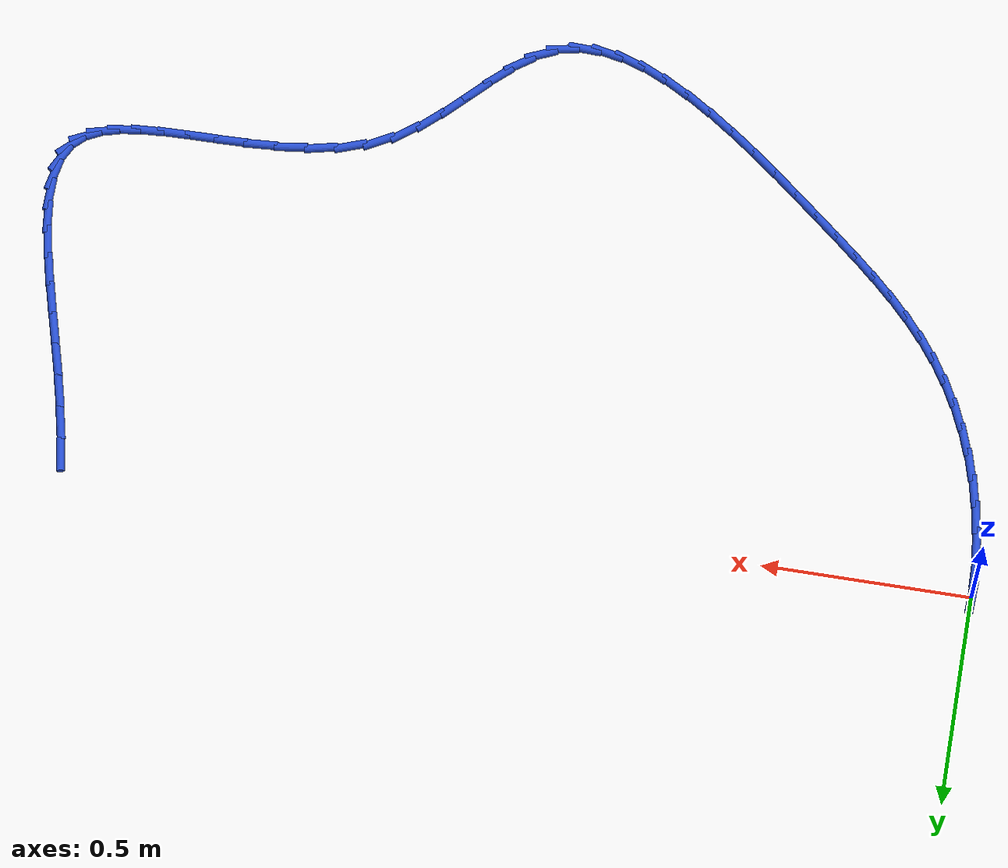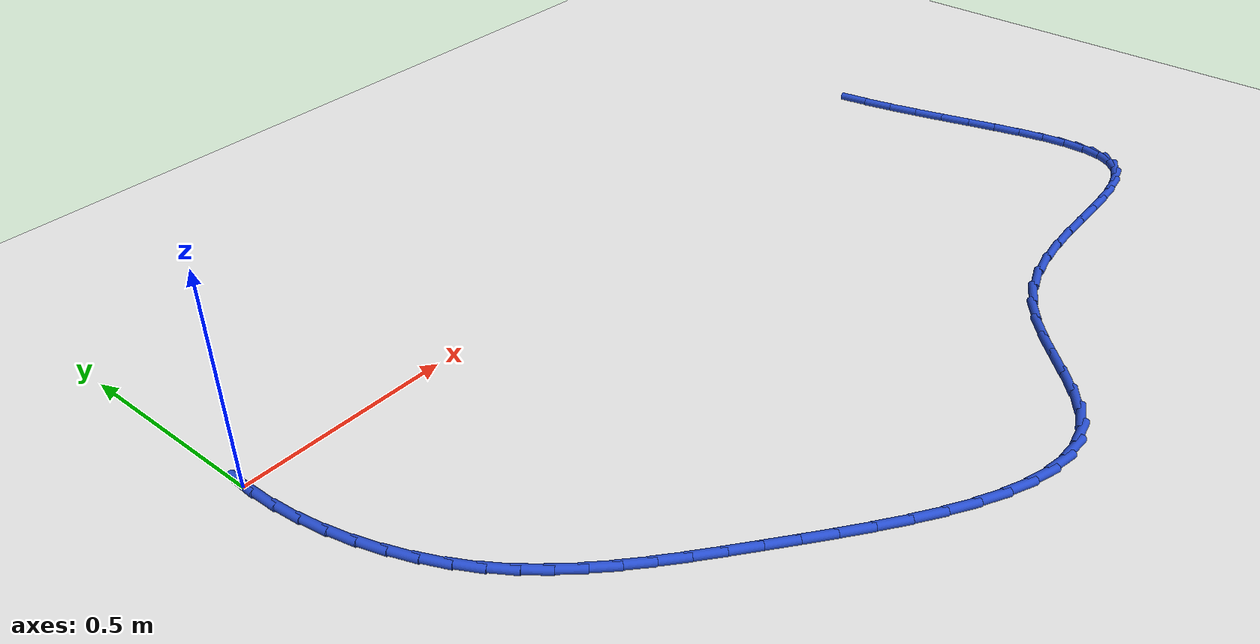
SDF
<sdf version="1.6">
 <world name="default">
  <model name="ground_plane">
   <static>1</static>
   <link name="link">
    <collision name="collision">
     <geometry><plane><normal>0 0 1</normal><size>100 100</size></plane></geometry>
     <surface><friction><ode><mu>100</mu><mu2>50</mu2></ode></friction></surface>
    </collision>
    <visual name="visual">
     <cast_shadows>0</cast_shadows>
     <geometry><plane><normal>0 0 1</normal><size>100 100</size></plane></geometry>
     <material>
      <script><uri>file://media/materials/scripts/gazebo.material</uri><name>Gazebo/WhiteGlow</name></script>
     </material>
    </visual>
   </link>
  </model>
  <model name="line">
   <link name="link_60">
    <pose>2.1660436622546095 -0.008837970664078907 0.01 0 1.57 -1.4033045811589893</pose>
    <collision name="collision">
     <geometry><cylinder><radius>0.01</radius><length>0.08</length></cylinder></geometry>
    </collision>
    <visual name="visual">
     <material>
      <script><name>Gazebo/Blue</name><uri>file://media/materials/scripts/gazebo.material</uri></script>
     </material>
     <geometry><cylinder><radius>0.01</radius><length>0.08</length></cylinder></geometry>
    </visual>
   </link>
   <link name="link_61">
    <pose>2.178760282802903 -0.0840505271491964 0.01 0 1.57 -1.3603354257803628</pose>
    <collision name="collision">
     <geometry><cylinder><radius>0.01</radius><length>0.08</length></cylinder></geometry>
    </collision>
    <visual name="visual">
     <material>
      <script><name>Gazebo/Blue</name><uri>file://media/materials/scripts/gazebo.material</uri></script>
     </material>
     <geometry><cylinder><radius>0.01</radius><length>0.08</length></cylinder></geometry>
    </visual>
   </link>
   <link name="link_62">
    <pose>2.1949230565546127 -0.15971032511480546 0.01 0 1.57 -1.331769866075255</pose>
    <collision name="collision">
     <geometry><cylinder><radius>0.01</radius><length>0.08</length></cylinder></geometry>
    </collision>
    <visual name="visual">
     <material>
      <script><name>Gazebo/Blue</name><uri>file://media/materials/scripts/gazebo.material</uri></script>
     </material>
     <geometry><cylinder><radius>0.01</radius><length>0.08</length></cylinder></geometry>
    </visual>
   </link>
   <link name="link_63">
    <pose>2.213270033702533 -0.23500001907793938 0.01 0 1.57 -1.3163948072680156</pose>
    <collision name="collision">
     <geometry><cylinder><radius>0.01</radius><length>0.08</length></cylinder></geometry>
    </collision>
    <visual name="visual">
     <material>
      <script><name>Gazebo/Blue</name><uri>file://media/materials/scripts/gazebo.material</uri></script>
     </material>
     <geometry><cylinder><radius>0.01</radius><length>0.08</length></cylinder></geometry>
    </visual>
   </link>
   <link name="link_64">
    <pose>2.232539264439458 -0.309102263555629 0.01 0 1.57 -1.3140366896980258</pose>
    <collision name="collision">
     <geometry><cylinder><radius>0.01</radius><length>0.08</length></cylinder></geometry>
    </collision>
    <visual name="visual">
     <material>
      <script><name>Gazebo/Blue</name><uri>file://media/materials/scripts/gazebo.material</uri></script>
     </material>
     <geometry><cylinder><radius>0.01</radius><length>0.08</length></cylinder></geometry>
    </visual>
   </link>
   <link name="link_65">
    <pose>2.2514687989581823 -0.38119971306490785 0.01 0 1.57 -1.3256945613247342</pose>
    <collision name="collision">
     <geometry><cylinder><radius>0.01</radius><length>0.08</length></cylinder></geometry>
    </collision>
    <visual name="visual">
     <material>
      <script><name>Gazebo/Blue</name><uri>file://media/materials/scripts/gazebo.material</uri></script>
     </material>
     <geometry><cylinder><radius>0.01</radius><length>0.08</length></cylinder></geometry>
    </visual>
   </link>
   <link name="link_66">
    <pose>2.2687966874515006 -0.4504750221228092 0.01 0 1.57 -1.3538912950899693</pose>
    <collision name="collision">
     <geometry><cylinder><radius>0.01</radius><length>0.08</length></cylinder></geometry>
    </collision>
    <visual name="visual">
     <material>
      <script><name>Gazebo/Blue</name><uri>file://media/materials/scripts/gazebo.material</uri></script>
     </material>
     <geometry><cylinder><radius>0.01</radius><length>0.08</length></cylinder></geometry>
    </visual>
   </link>
   <link name="link_67">
    <pose>2.2832609801122064 -0.5161108452463641 0.01 0 1.57 -1.4033862284732341</pose>
    <collision name="collision">
     <geometry><cylinder><radius>0.01</radius><length>0.08</length></cylinder></geometry>
    </collision>
    <visual name="visual">
     <material>
      <script><name>Gazebo/Blue</name><uri>file://media/materials/scripts/gazebo.material</uri></script>
     </material>
     <geometry><cylinder><radius>0.01</radius><length>0.08</length></cylinder></geometry>
    </visual>
   </link>
   <link name="link_68">
    <pose>2.293599727133094 -0.5772898369526058 0.01 0 1.57 -1.482461064696117</pose>
    <collision name="collision">
     <geometry><cylinder><radius>0.01</radius><length>0.08</length></cylinder></geometry>
    </collision>
    <visual name="visual">
     <material>
      <script><name>Gazebo/Blue</name><uri>file://media/materials/scripts/gazebo.material</uri></script>
     </material>
     <geometry><cylinder><radius>0.01</radius><length>0.08</length></cylinder></geometry>
    </visual>
   </link>
   <link name="link_69">
    <pose>2.2985509787069587 -0.633194651758567 0.01 0 1.57 1.5367183493857979</pose>
    <collision name="collision">
     <geometry><cylinder><radius>0.01</radius><length>0.08</length></cylinder></geometry>
    </collision>
    <visual name="visual">
     <material>
      <script><name>Gazebo/Blue</name><uri>file://media/materials/scripts/gazebo.material</uri></script>
     </material>
     <geometry><cylinder><radius>0.01</radius><length>0.08</length></cylinder></geometry>
    </visual>
   </link>
   <link name="link_70">
    <pose>2.2968527850265943 -0.6830079441812811 0.01 0 1.57 1.3504561489142373</pose>
    <collision name="collision">
     <geometry><cylinder><radius>0.01</radius><length>0.08</length></cylinder></geometry>
    </collision>
    <visual name="visual">
     <material>
      <script><name>Gazebo/Blue</name><uri>file://media/materials/scripts/gazebo.material</uri></script>
     </material>
     <geometry><cylinder><radius>0.01</radius><length>0.08</length></cylinder></geometry>
    </visual>
   </link>
   <link name="link_71">
    <pose>2.2872431962847948 -0.7259123687377788 0.01 0 1.57 1.080369466284844</pose>
    <collision name="collision">
     <geometry><cylinder><radius>0.01</radius><length>0.08</length></cylinder></geometry>
    </collision>
    <visual name="visual">
     <material>
      <script><name>Gazebo/Blue</name><uri>file://media/materials/scripts/gazebo.material</uri></script>
     </material>
     <geometry><cylinder><radius>0.01</radius><length>0.08</length></cylinder></geometry>
    </visual>
   </link>
   <link name="link_72">
    <pose>2.268460262674355 -0.7610905799450939 0.01 0 1.57 0.7407471147514527</pose>
    <collision name="collision">
     <geometry><cylinder><radius>0.01</radius><length>0.08</length></cylinder></geometry>
    </collision>
    <visual name="visual">
     <material>
      <script><name>Gazebo/Blue</name><uri>file://media/materials/scripts/gazebo.material</uri></script>
     </material>
     <geometry><cylinder><radius>0.01</radius><length>0.08</length></cylinder></geometry>
    </visual>
   </link>
   <link name="link_73">
    <pose>2.2392889280862063 -0.7877666124978435 0.01 0 1.57 0.43765504512680814</pose>
    <collision name="collision">
     <geometry><cylinder><radius>0.01</radius><length>0.08</length></cylinder></geometry>
    </collision>
    <visual name="visual">
     <material>
      <script><name>Gazebo/Blue</name><uri>file://media/materials/scripts/gazebo.material</uri></script>
     </material>
     <geometry><cylinder><radius>0.01</radius><length>0.08</length></cylinder></geometry>
    </visual>
   </link>
   <link name="link_74">
    <pose>2.1997593088566223 -0.8062632725452258 0.01 0 1.57 0.2391355166474459</pose>
    <collision name="collision">
     <geometry><cylinder><radius>0.01</radius><length>0.08</length></cylinder></geometry>
    </collision>
    <visual name="visual">
     <material>
      <script><name>Gazebo/Blue</name><uri>file://media/materials/scripts/gazebo.material</uri></script>
     </material>
     <geometry><cylinder><radius>0.01</radius><length>0.08</length></cylinder></geometry>
    </visual>
   </link>
   <link name="link_75">
    <pose>2.151246959306751 -0.8180906145225768 0.01 0 1.57 0.1194444420794951</pose>
    <collision name="collision">
     <geometry><cylinder><radius>0.01</radius><length>0.08</length></cylinder></geometry>
    </collision>
    <visual name="visual">
     <material>
      <script><name>Gazebo/Blue</name><uri>file://media/materials/scripts/gazebo.material</uri></script>
     </material>
     <geometry><cylinder><radius>0.01</radius><length>0.08</length></cylinder></geometry>
    </visual>
   </link>
   <link name="link_76">
    <pose>2.095194418275115 -0.8248178016865615 0.01 0 1.57 0.051381696295444965</pose>
    <collision name="collision">
     <geometry><cylinder><radius>0.01</radius><length>0.08</length></cylinder></geometry>
    </collision>
    <visual name="visual">
     <material>
      <script><name>Gazebo/Blue</name><uri>file://media/materials/scripts/gazebo.material</uri></script>
     </material>
     <geometry><cylinder><radius>0.01</radius><length>0.08</length></cylinder></geometry>
    </visual>
   </link>
   <link name="link_77">
    <pose>2.0330442246002387 -0.8280139972938443 0.01 0 1.57 0.018474982160681608</pose>
    <collision name="collision">
     <geometry><cylinder><radius>0.01</radius><length>0.08</length></cylinder></geometry>
    </collision>
    <visual name="visual">
     <material>
      <script><name>Gazebo/Blue</name><uri>file://media/materials/scripts/gazebo.material</uri></script>
     </material>
     <geometry><cylinder><radius>0.01</radius><length>0.08</length></cylinder></geometry>
    </visual>
   </link>
   <link name="link_78">
    <pose>1.9662389171206462 -0.8292483646010907 0.01 0 1.57 0.012020668050558058</pose>
    <collision name="collision">
     <geometry><cylinder><radius>0.01</radius><length>0.08</length></cylinder></geometry>
    </collision>
    <visual name="visual">
     <material>
      <script><name>Gazebo/Blue</name><uri>file://media/materials/scripts/gazebo.material</uri></script>
     </material>
     <geometry><cylinder><radius>0.01</radius><length>0.08</length></cylinder></geometry>
    </visual>
   </link>
   <link name="link_79">
    <pose>1.8962210346748616 -0.8300900668649643 0.01 0 1.57 0.02810596917246258</pose>
    <collision name="collision">
     <geometry><cylinder><radius>0.01</radius><length>0.08</length></cylinder></geometry>
    </collision>
    <visual name="visual">
     <material>
      <script><name>Gazebo/Blue</name><uri>file://media/materials/scripts/gazebo.material</uri></script>
     </material>
     <geometry><cylinder><radius>0.01</radius><length>0.08</length></cylinder></geometry>
    </visual>
   </link>
   <link name="link_80">
    <pose>1.8244331161014087 -0.8321082673421306 0.01 0 1.57 0.06596301923761096</pose>
    <collision name="collision">
     <geometry><cylinder><radius>0.01</radius><length>0.08</length></cylinder></geometry>
    </collision>
    <visual name="visual">
     <material>
      <script><name>Gazebo/Blue</name><uri>file://media/materials/scripts/gazebo.material</uri></script>
     </material>
     <geometry><cylinder><radius>0.01</radius><length>0.08</length></cylinder></geometry>
    </visual>
   </link>
   <link name="link_81">
    <pose>1.7523177002388108 -0.8368721292892539 0.01 0 1.57 0.1271780173564287</pose>
    <collision name="collision">
     <geometry><cylinder><radius>0.01</radius><length>0.08</length></cylinder></geometry>
    </collision>
    <visual name="visual">
     <material>
      <script><name>Gazebo/Blue</name><uri>file://media/materials/scripts/gazebo.material</uri></script>
     </material>
     <geometry><cylinder><radius>0.01</radius><length>0.08</length></cylinder></geometry>
    </visual>
   </link>
   <link name="link_82">
    <pose>1.681317325925594 -0.8459508159629991 0.01 0 1.57 0.21522960374175848</pose>
    <collision name="collision">
     <geometry><cylinder><radius>0.01</radius><length>0.08</length></cylinder></geometry>
    </collision>
    <visual name="visual">
     <material>
      <script><name>Gazebo/Blue</name><uri>file://media/materials/scripts/gazebo.material</uri></script>
     </material>
     <geometry><cylinder><radius>0.01</radius><length>0.08</length></cylinder></geometry>
    </visual>
   </link>
   <link name="link_83">
    <pose>1.6128745320002815 -0.8609134906200308 0.01 0 1.57 0.3347504382370729</pose>
    <collision name="collision">
     <geometry><cylinder><radius>0.01</radius><length>0.08</length></cylinder></geometry>
    </collision>
    <visual name="visual">
     <material>
      <script><name>Gazebo/Blue</name><uri>file://media/materials/scripts/gazebo.material</uri></script>
     </material>
     <geometry><cylinder><radius>0.01</radius><length>0.08</length></cylinder></geometry>
    </visual>
   </link>
   <link name="link_84">
    <pose>1.5484318573013969 -0.8833293165170133 0.01 0 1.57 0.4865345919861423</pose>
    <collision name="collision">
     <geometry><cylinder><radius>0.01</radius><length>0.08</length></cylinder></geometry>
    </collision>
    <visual name="visual">
     <material>
      <script><name>Gazebo/Blue</name><uri>file://media/materials/scripts/gazebo.material</uri></script>
     </material>
     <geometry><cylinder><radius>0.01</radius><length>0.08</length></cylinder></geometry>
    </visual>
   </link>
   <link name="link_85">
    <pose>1.4893294633405836 -0.9145912331697174 0.01 0 1.57 0.6259714798928356</pose>
    <collision name="collision">
     <geometry><cylinder><radius>0.01</radius><length>0.08</length></cylinder></geometry>
    </collision>
    <visual name="visual">
     <material>
      <script><name>Gazebo/Blue</name><uri>file://media/materials/scripts/gazebo.material</uri></script>
     </material>
     <geometry><cylinder><radius>0.01</radius><length>0.08</length></cylinder></geometry>
    </visual>
   </link>
   <link name="link_86">
    <pose>1.4354339343117248 -0.9535556877342434 0.01 0 1.57 0.7180863660673723</pose>
    <collision name="collision">
     <geometry><cylinder><radius>0.01</radius><length>0.08</length></cylinder></geometry>
    </collision>
    <visual name="visual">
     <material>
      <script><name>Gazebo/Blue</name><uri>file://media/materials/scripts/gazebo.material</uri></script>
     </material>
     <geometry><cylinder><radius>0.01</radius><length>0.08</length></cylinder></geometry>
    </visual>
   </link>
   <link name="link_87">
    <pose>1.3855065842853218 -0.9971766081099644 0.01 0 1.57 0.763331847416488</pose>
    <collision name="collision">
     <geometry><cylinder><radius>0.01</radius><length>0.08</length></cylinder></geometry>
    </collision>
    <visual name="visual">
     <material>
      <script><name>Gazebo/Blue</name><uri>file://media/materials/scripts/gazebo.material</uri></script>
     </material>
     <geometry><cylinder><radius>0.01</radius><length>0.08</length></cylinder></geometry>
    </visual>
   </link>
   <link name="link_88">
    <pose>1.3382819267406596 -1.0423617899071393 0.01 0 1.57 0.7615866869515496</pose>
    <collision name="collision">
     <geometry><cylinder><radius>0.01</radius><length>0.08</length></cylinder></geometry>
    </collision>
    <visual name="visual">
     <material>
      <script><name>Gazebo/Blue</name><uri>file://media/materials/scripts/gazebo.material</uri></script>
     </material>
     <geometry><cylinder><radius>0.01</radius><length>0.08</length></cylinder></geometry>
    </visual>
   </link>
   <link name="link_89">
    <pose>1.292494475157023 -1.0860190287360274 0.01 0 1.57 0.7078408578330921</pose>
    <collision name="collision">
     <geometry><cylinder><radius>0.01</radius><length>0.08</length></cylinder></geometry>
    </collision>
    <visual name="visual">
     <material>
      <script><name>Gazebo/Blue</name><uri>file://media/materials/scripts/gazebo.material</uri></script>
     </material>
     <geometry><cylinder><radius>0.01</radius><length>0.08</length></cylinder></geometry>
    </visual>
   </link>
   <link name="link_90">
    <pose>1.2468787430136985 -1.125056120206886 0.01 0 1.57 0.5907406688059903</pose>
    <collision name="collision">
     <geometry><cylinder><radius>0.01</radius><length>0.08</length></cylinder></geometry>
    </collision>
    <visual name="visual">
     <material>
      <script><name>Gazebo/Blue</name><uri>file://media/materials/scripts/gazebo.material</uri></script>
     </material>
     <geometry><cylinder><radius>0.01</radius><length>0.08</length></cylinder></geometry>
    </visual>
   </link>
   <link name="link_91">
    <pose>1.200169243789972 -1.1563808599299756 0.01 0 1.57 0.39770709339726645</pose>
    <collision name="collision">
     <geometry><cylinder><radius>0.01</radius><length>0.08</length></cylinder></geometry>
    </collision>
    <visual name="visual">
     <material>
      <script><name>Gazebo/Blue</name><uri>file://media/materials/scripts/gazebo.material</uri></script>
     </material>
     <geometry><cylinder><radius>0.01</radius><length>0.08</length></cylinder></geometry>
    </visual>
   </link>
   <link name="link_92">
    <pose>1.1511322041275491 -1.1769809799034008 0.01 0 1.57 0.16944423398524028</pose>
    <collision name="collision">
     <geometry><cylinder><radius>0.01</radius><length>0.08</length></cylinder></geometry>
    </collision>
    <visual name="visual">
     <material>
      <script><name>Gazebo/Blue</name><uri>file://media/materials/scripts/gazebo.material</uri></script>
     </material>
     <geometry><cylinder><radius>0.01</radius><length>0.08</length></cylinder></geometry>
    </visual>
   </link>
   <link name="link_93">
    <pose>1.0993272342002904 -1.1858440194259199 0.01 0 1.57 -0.03307549766015126</pose>
    <collision name="collision">
     <geometry><cylinder><radius>0.01</radius><length>0.08</length></cylinder></geometry>
    </collision>
    <visual name="visual">
     <material>
      <script><name>Gazebo/Blue</name><uri>file://media/materials/scripts/gazebo.material</uri></script>
     </material>
     <geometry><cylinder><radius>0.01</radius><length>0.08</length></cylinder></geometry>
    </visual>
   </link>
   <link name="link_94">
    <pose>1.0451445896225193 -1.1840512476870328 0.01 0 1.57 -0.1981218105404499</pose>
    <collision name="collision">
     <geometry><cylinder><radius>0.01</radius><length>0.08</length></cylinder></geometry>
    </collision>
    <visual name="visual">
     <material>
      <script><name>Gazebo/Blue</name><uri>file://media/materials/scripts/gazebo.material</uri></script>
     </material>
     <geometry><cylinder><radius>0.01</radius><length>0.08</length></cylinder></geometry>
    </visual>
   </link>
   <link name="link_95">
    <pose>0.9890136964740778 -1.1727826671871044 0.01 0 1.57 -0.32717061191060276</pose>
    <collision name="collision">
     <geometry><cylinder><radius>0.01</radius><length>0.08</length></cylinder></geometry>
    </collision>
    <visual name="visual">
     <material>
      <script><name>Gazebo/Blue</name><uri>file://media/materials/scripts/gazebo.material</uri></script>
     </material>
     <geometry><cylinder><radius>0.01</radius><length>0.08</length></cylinder></geometry>
    </visual>
   </link>
   <link name="link_96">
    <pose>0.9313639808348081 -1.1532182804265017 0.01 0 1.57 -0.42635365608227027</pose>
    <collision name="collision">
     <geometry><cylinder><radius>0.01</radius><length>0.08</length></cylinder></geometry>
    </collision>
    <visual name="visual">
     <material>
      <script><name>Gazebo/Blue</name><uri>file://media/materials/scripts/gazebo.material</uri></script>
     </material>
     <geometry><cylinder><radius>0.01</radius><length>0.08</length></cylinder></geometry>
    </visual>
   </link>
   <link name="link_97">
    <pose>0.8726248687845547 -1.1265380899055917 0.01 0 1.57 -0.5021513957156988</pose>
    <collision name="collision">
     <geometry><cylinder><radius>0.01</radius><length>0.08</length></cylinder></geometry>
    </collision>
    <visual name="visual">
     <material>
      <script><name>Gazebo/Blue</name><uri>file://media/materials/scripts/gazebo.material</uri></script>
     </material>
     <geometry><cylinder><radius>0.01</radius><length>0.08</length></cylinder></geometry>
    </visual>
   </link>
   <link name="link_98">
    <pose>0.8132257864031592 -1.0939220981247404 0.01 0 1.57 -0.5598437734756091</pose>
    <collision name="collision">
     <geometry><cylinder><radius>0.01</radius><length>0.08</length></cylinder></geometry>
    </collision>
    <visual name="visual">
     <material>
      <script><name>Gazebo/Blue</name><uri>file://media/materials/scripts/gazebo.material</uri></script>
     </material>
     <geometry><cylinder><radius>0.01</radius><length>0.08</length></cylinder></geometry>
    </visual>
   </link>
   <link name="link_99">
    <pose>0.753596159770465 -1.0565503075843155 0.01 0 1.57 -0.6033029600987659</pose>
    <collision name="collision">
     <geometry><cylinder><radius>0.01</radius><length>0.08</length></cylinder></geometry>
    </collision>
    <visual name="visual">
     <material>
      <script><name>Gazebo/Blue</name><uri>file://media/materials/scripts/gazebo.material</uri></script>
     </material>
     <geometry><cylinder><radius>0.01</radius><length>0.08</length></cylinder></geometry>
    </visual>
   </link>
   <link name="link_100">
    <pose>0.6941654149663139 -1.0156027207846816 0.01 0 1.57 -0.6351950097773336</pose>
    <collision name="collision">
     <geometry><cylinder><radius>0.01</radius><length>0.08</length></cylinder></geometry>
    </collision>
    <visual name="visual">
     <material>
      <script><name>Gazebo/Blue</name><uri>file://media/materials/scripts/gazebo.material</uri></script>
     </material>
     <geometry><cylinder><radius>0.01</radius><length>0.08</length></cylinder></geometry>
    </visual>
   </link>
   <link name="link_101">
    <pose>0.6353629780705498 -0.972259340226207 0.01 0 1.57 -0.6572188599474473</pose>
    <collision name="collision">
     <geometry><cylinder><radius>0.01</radius><length>0.08</length></cylinder></geometry>
    </collision>
    <visual name="visual">
     <material>
      <script><name>Gazebo/Blue</name><uri>file://media/materials/scripts/gazebo.material</uri></script>
     </material>
     <geometry><cylinder><radius>0.01</radius><length>0.08</length></cylinder></geometry>
    </visual>
   </link>
   <link name="link_102">
    <pose>0.5776182751630154 -0.927700168409258 0.01 0 1.57 -0.6702695481571677</pose>
    <collision name="collision">
     <geometry><cylinder><radius>0.01</radius><length>0.08</length></cylinder></geometry>
    </collision>
    <visual name="visual">
     <material>
      <script><name>Gazebo/Blue</name><uri>file://media/materials/scripts/gazebo.material</uri></script>
     </material>
     <geometry><cylinder><radius>0.01</radius><length>0.08</length></cylinder></geometry>
    </visual>
   </link>
   <link name="link_103">
    <pose>0.5213607323235534 -0.8831052078342007 0.01 0 1.57 -0.6751689632454283</pose>
    <collision name="collision">
     <geometry><cylinder><radius>0.01</radius><length>0.08</length></cylinder></geometry>
    </collision>
    <visual name="visual">
     <material>
      <script><name>Gazebo/Blue</name><uri>file://media/materials/scripts/gazebo.material</uri></script>
     </material>
     <geometry><cylinder><radius>0.01</radius><length>0.08</length></cylinder></geometry>
    </visual>
   </link>
   <link name="link_104">
    <pose>0.4670096164640014 -0.8395861500668168 0.01 0 1.57 -0.6813878355908267</pose>
    <collision name="collision">
     <geometry><cylinder><radius>0.01</radius><length>0.08</length></cylinder></geometry>
    </collision>
    <visual name="visual">
     <material>
      <script><name>Gazebo/Blue</name><uri>file://media/materials/scripts/gazebo.material</uri></script>
     </material>
     <geometry><cylinder><radius>0.01</radius><length>0.08</length></cylinder></geometry>
    </visual>
   </link>
   <link name="link_105">
    <pose>0.41483891750218577 -0.7972778343134592 0.01 0 1.57 -0.6967669449336491</pose>
    <collision name="collision">
     <geometry><cylinder><radius>0.01</radius><length>0.08</length></cylinder></geometry>
    </collision>
    <visual name="visual">
     <material>
      <script><name>Gazebo/Blue</name><uri>file://media/materials/scripts/gazebo.material</uri></script>
     </material>
     <geometry><cylinder><radius>0.01</radius><length>0.08</length></cylinder></geometry>
    </visual>
   </link>
   <link name="link_106">
    <pose>0.36501413800127025 -0.755585623450885 0.01 0 1.57 -0.7222525353646421</pose>
    <collision name="collision">
     <geometry><cylinder><radius>0.01</radius><length>0.08</length></cylinder></geometry>
    </collision>
    <visual name="visual">
     <material>
      <script><name>Gazebo/Blue</name><uri>file://media/materials/scripts/gazebo.material</uri></script>
     </material>
     <geometry><cylinder><radius>0.01</radius><length>0.08</length></cylinder></geometry>
    </visual>
   </link>
   <link name="link_107">
    <pose>0.3176981765233131 -0.7138973708758277 0.01 0 1.57 -0.7584000609892391</pose>
    <collision name="collision">
     <geometry><cylinder><radius>0.01</radius><length>0.08</length></cylinder></geometry>
    </collision>
    <visual name="visual">
     <material>
      <script><name>Gazebo/Blue</name><uri>file://media/materials/scripts/gazebo.material</uri></script>
     </material>
     <geometry><cylinder><radius>0.01</radius><length>0.08</length></cylinder></geometry>
    </visual>
   </link>
   <link name="link_108">
    <pose>0.2730539316303722 -0.6716009299850199 0.01 0 1.57 -0.8054027366966839</pose>
    <collision name="collision">
     <geometry><cylinder><radius>0.01</radius><length>0.08</length></cylinder></geometry>
    </collision>
    <visual name="visual">
     <material>
      <script><name>Gazebo/Blue</name><uri>file://media/materials/scripts/gazebo.material</uri></script>
     </material>
     <geometry><cylinder><radius>0.01</radius><length>0.08</length></cylinder></geometry>
    </visual>
   </link>
   <link name="link_109">
    <pose>0.23124430188450698 -0.6280841541751956 0.01 0 1.57 -0.8629164086557689</pose>
    <collision name="collision">
     <geometry><cylinder><radius>0.01</radius><length>0.08</length></cylinder></geometry>
    </collision>
    <visual name="visual">
     <material>
      <script><name>Gazebo/Blue</name><uri>file://media/materials/scripts/gazebo.material</uri></script>
     </material>
     <geometry><cylinder><radius>0.01</radius><length>0.08</length></cylinder></geometry>
    </visual>
   </link>
   <link name="link_110">
    <pose>0.19243218584777516 -0.582734896843088 0.01 0 1.57 -0.9298942112888191</pose>
    <collision name="collision">
     <geometry><cylinder><radius>0.01</radius><length>0.08</length></cylinder></geometry>
    </collision>
    <visual name="visual">
     <material>
      <script><name>Gazebo/Blue</name><uri>file://media/materials/scripts/gazebo.material</uri></script>
     </material>
     <geometry><cylinder><radius>0.01</radius><length>0.08</length></cylinder></geometry>
    </visual>
   </link>
   <link name="link_111">
    <pose>0.15678048208223505 -0.5349410113854302 0.01 0 1.57 -1.0044521048500232</pose>
    <collision name="collision">
     <geometry><cylinder><radius>0.01</radius><length>0.08</length></cylinder></geometry>
    </collision>
    <visual name="visual">
     <material>
      <script><name>Gazebo/Blue</name><uri>file://media/materials/scripts/gazebo.material</uri></script>
     </material>
     <geometry><cylinder><radius>0.01</radius><length>0.08</length></cylinder></geometry>
    </visual>
   </link>
   <link name="link_112">
    <pose>0.12445183908904751 -0.4840956506336826 0.01 0 1.57 -1.080816177583327</pose>
    <collision name="collision">
     <geometry><cylinder><radius>0.01</radius><length>0.08</length></cylinder></geometry>
    </collision>
    <visual name="visual">
     <material>
      <script><name>Gazebo/Blue</name><uri>file://media/materials/scripts/gazebo.material</uri></script>
     </material>
     <geometry><cylinder><radius>0.01</radius><length>0.08</length></cylinder></geometry>
    </visual>
   </link>
   <link name="link_113">
    <pose>0.09559043109166737 -0.42998348496568534 0.01 0 1.57 -1.1529567482384018</pose>
    <collision name="collision">
     <geometry><cylinder><radius>0.01</radius><length>0.08</length></cylinder></geometry>
    </collision>
    <visual name="visual">
     <material>
      <script><name>Gazebo/Blue</name><uri>file://media/materials/scripts/gazebo.material</uri></script>
     </material>
     <geometry><cylinder><radius>0.01</radius><length>0.08</length></cylinder></geometry>
    </visual>
   </link>
   <link name="link_114">
    <pose>0.07030960025140837 -0.37304259559947606 0.01 0 1.57 -1.2214697505841066</pose>
    <collision name="collision">
     <geometry><cylinder><radius>0.01</radius><length>0.08</length></cylinder></geometry>
    </collision>
    <visual name="visual">
     <material>
      <script><name>Gazebo/Blue</name><uri>file://media/materials/scripts/gazebo.material</uri></script>
     </material>
     <geometry><cylinder><radius>0.01</radius><length>0.08</length></cylinder></geometry>
    </visual>
   </link>
   <link name="link_115">
    <pose>0.04871976200560243 -0.3137730885754152 0.01 0 1.57 -1.2874823351293172</pose>
    <collision name="collision">
     <geometry><cylinder><radius>0.01</radius><length>0.08</length></cylinder></geometry>
    </collision>
    <visual name="visual">
     <material>
      <script><name>Gazebo/Blue</name><uri>file://media/materials/scripts/gazebo.material</uri></script>
     </material>
     <geometry><cylinder><radius>0.01</radius><length>0.08</length></cylinder></geometry>
    </visual>
   </link>
   <link name="link_116">
    <pose>0.030931331791582244 -0.2526750699338656 0.01 0 1.57 -1.352065283187497</pose>
    <collision name="collision">
     <geometry><cylinder><radius>0.01</radius><length>0.08</length></cylinder></geometry>
    </collision>
    <visual name="visual">
     <material>
      <script><name>Gazebo/Blue</name><uri>file://media/materials/scripts/gazebo.material</uri></script>
     </material>
     <geometry><cylinder><radius>0.01</radius><length>0.08</length></cylinder></geometry>
    </visual>
   </link>
   <link name="link_117">
    <pose>0.017054725046679722 -0.19024864571518801 0.01 0 1.57 -1.4162499743399048</pose>
    <collision name="collision">
     <geometry><cylinder><radius>0.01</radius><length>0.08</length></cylinder></geometry>
    </collision>
    <visual name="visual">
     <material>
      <script><name>Gazebo/Blue</name><uri>file://media/materials/scripts/gazebo.material</uri></script>
     </material>
     <geometry><cylinder><radius>0.01</radius><length>0.08</length></cylinder></geometry>
    </visual>
   </link>
   <link name="link_118">
    <pose>0.007200357208227056 -0.1269939219597438 0.01 0 1.57 -1.4810498387651672</pose>
    <collision name="collision">
     <geometry><cylinder><radius>0.01</radius><length>0.08</length></cylinder></geometry>
    </collision>
    <visual name="visual">
     <material>
      <script><name>Gazebo/Blue</name><uri>file://media/materials/scripts/gazebo.material</uri></script>
     </material>
     <geometry><cylinder><radius>0.01</radius><length>0.08</length></cylinder></geometry>
    </visual>
   </link>
   <link name="link_119">
    <pose>0.0014786437135563494 -0.06341100470789346 0.01 0 1.57 -1.5474821433263637</pose>
    <collision name="collision">
     <geometry><cylinder><radius>0.01</radius><length>0.08</length></cylinder></geometry>
    </collision>
    <visual name="visual">
     <material>
      <script><name>Gazebo/Blue</name><uri>file://media/materials/scripts/gazebo.material</uri></script>
     </material>
     <geometry><cylinder><radius>0.01</radius><length>0.08</length></cylinder></geometry>
    </visual>
   </link>
   <link name="link_120">
    <pose>-7.28583859910259e-17 -8.326672684688674e-17 0.01 0 1.57 1.5250061071503602</pose>
    <collision name="collision">
     <geometry><cylinder><radius>0.01</radius><length>0.08</length></cylinder></geometry>
    </collision>
    <visual name="visual">
     <material>
      <script><name>Gazebo/Blue</name><uri>file://media/materials/scripts/gazebo.material</uri></script>
     </material>
     <geometry><cylinder><radius>0.01</radius><length>0.08</length></cylinder></geometry>
    </visual>
   </link>
  </model>
 </world>
</sdf>
